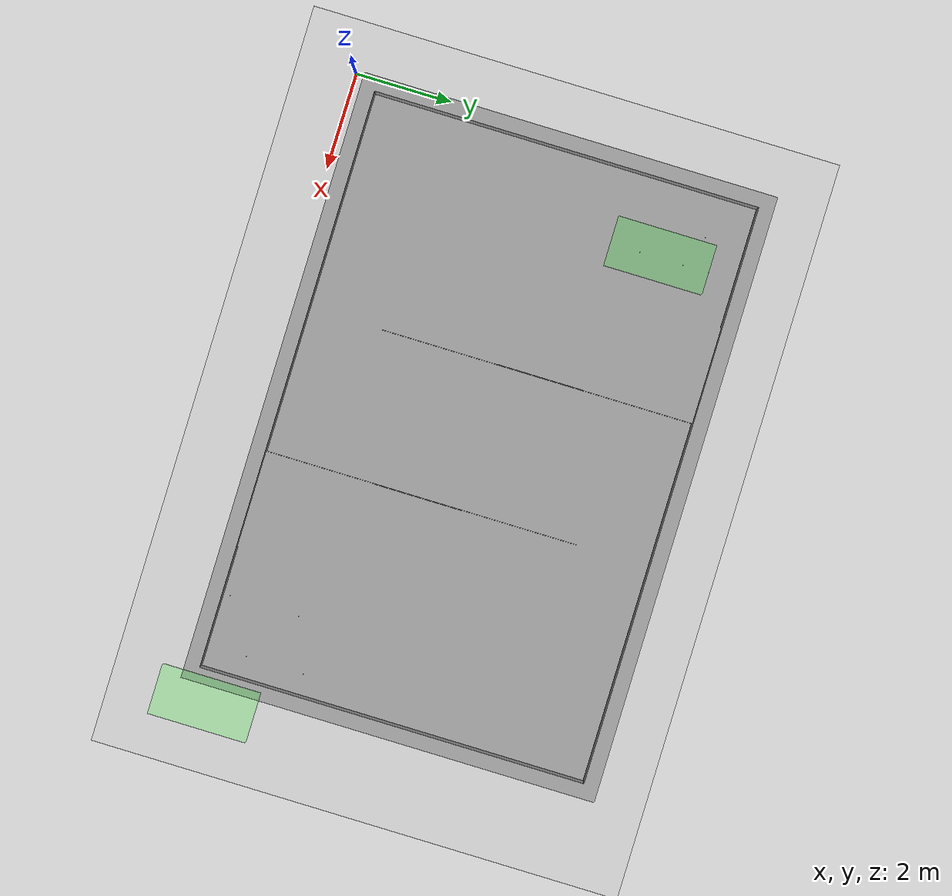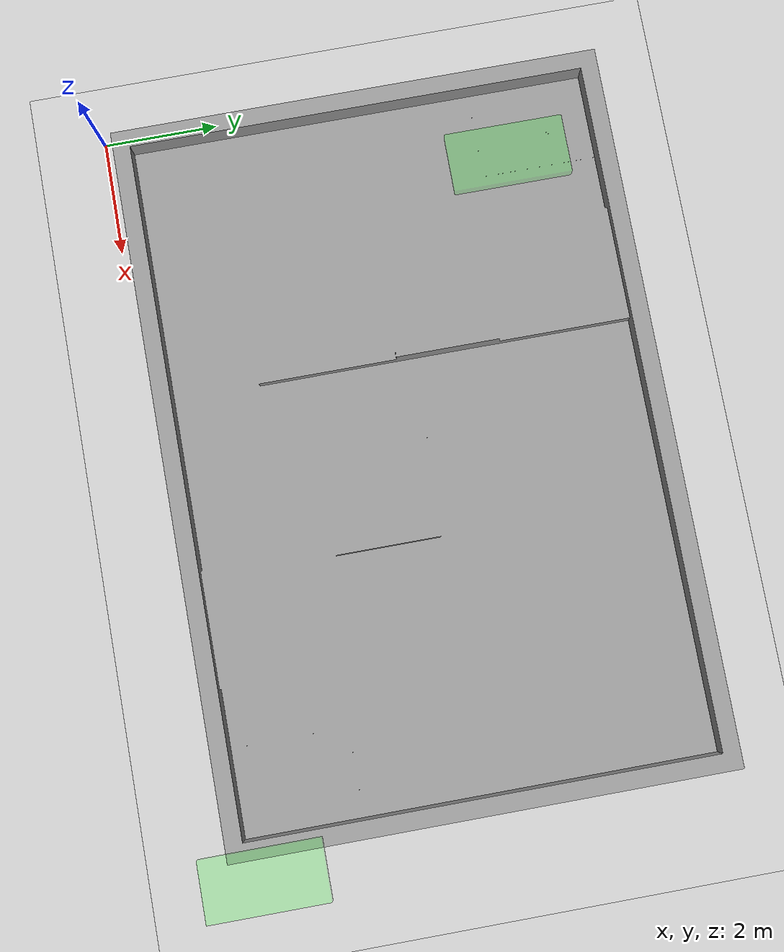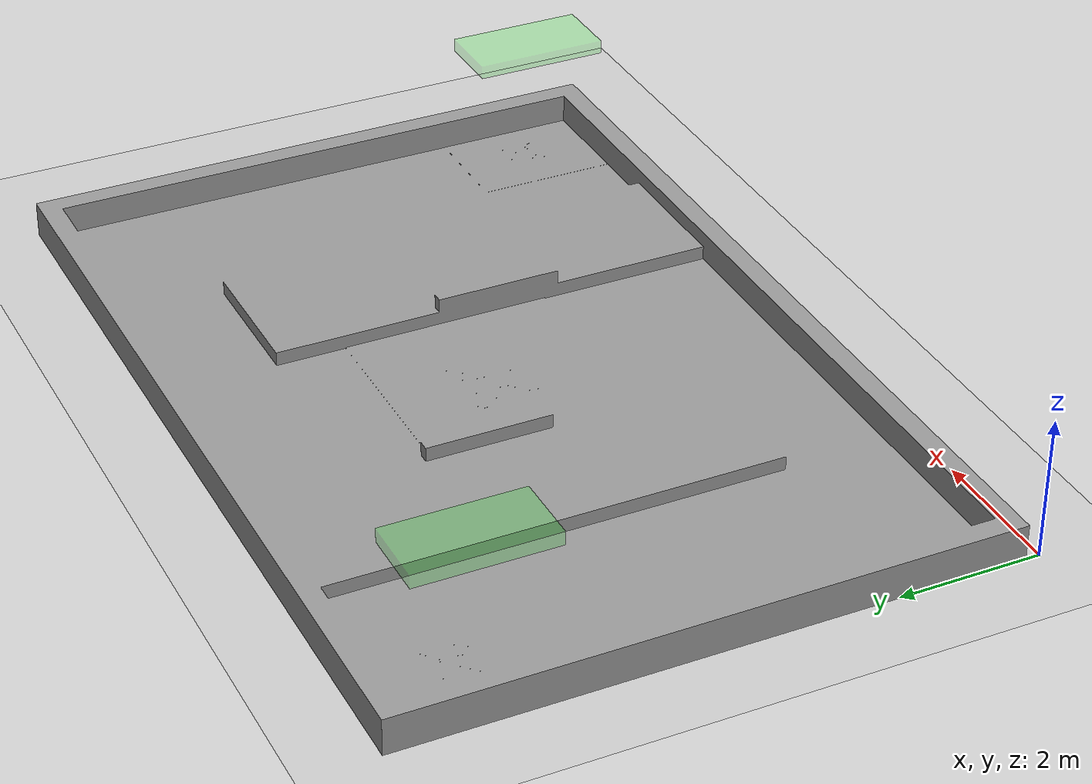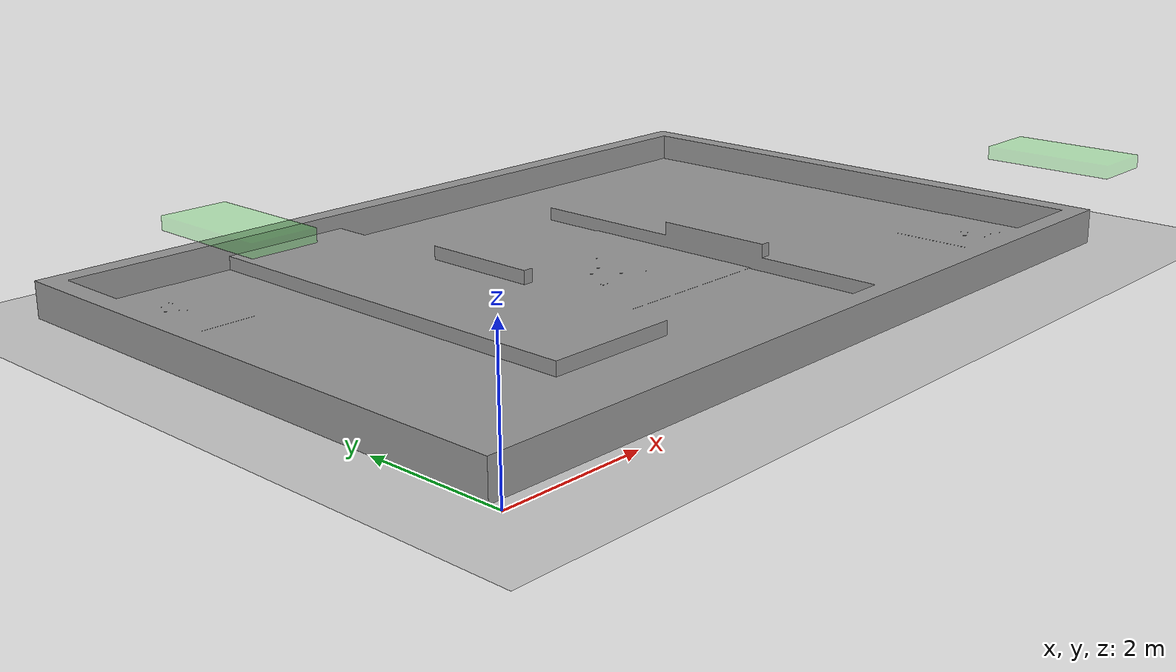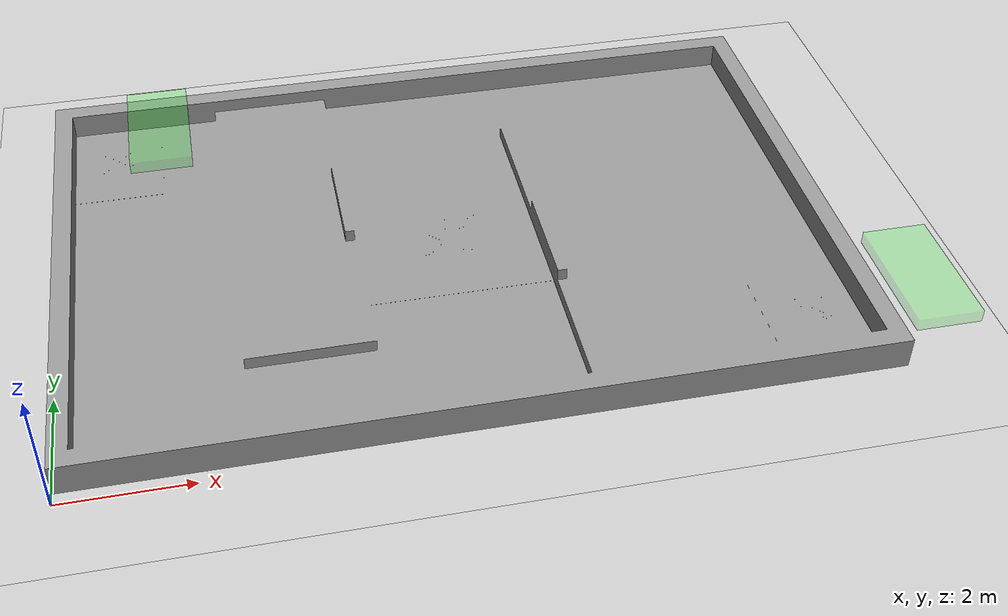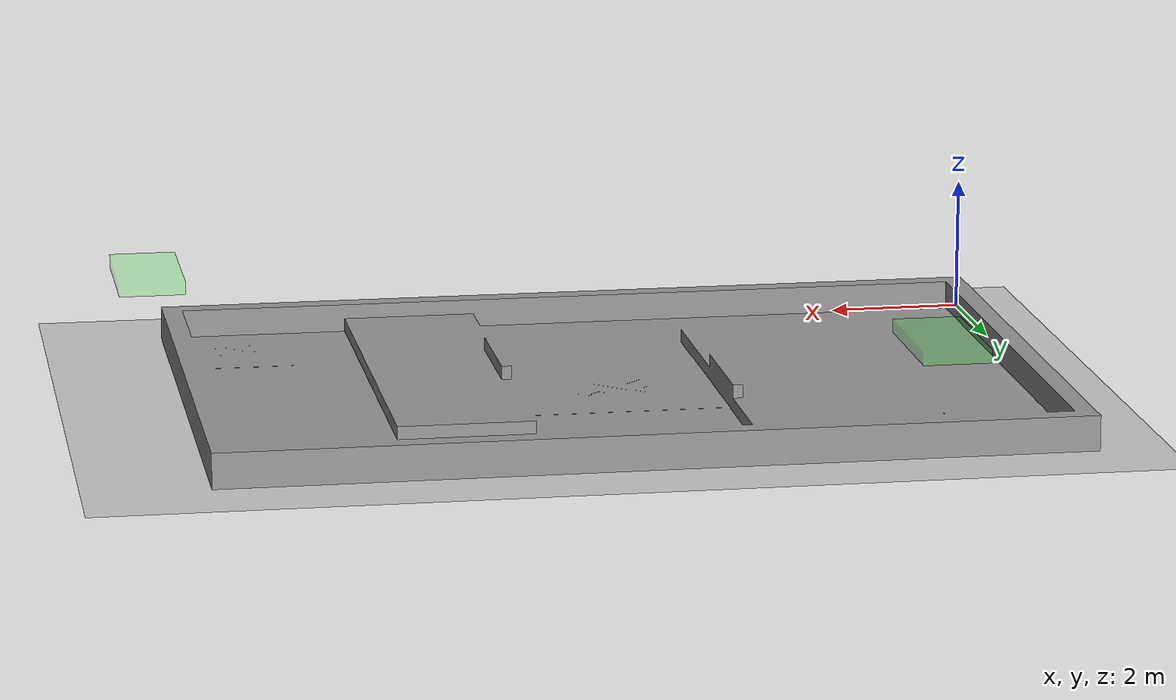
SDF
<?xml version='1.0' encoding='utf-8'?>
<sdf version='1.7'>
  <world name='default'>
    <!-- Physics -->
    <plugin filename="libignition-gazebo-physics-system.so" name="ignition::gazebo::systems::Physics">
    </plugin>

    <!-- Forwards simulation state to the GUI -->
    <plugin filename="libignition-gazebo-scene-broadcaster-system.so" name="ignition::gazebo::systems::SceneBroadcaster">
    </plugin>

    <!-- Processes user commands, like translate and create -->
    <plugin filename="libignition-gazebo-user-commands-system.so" name="ignition::gazebo::systems::UserCommands">
    </plugin>

    <!-- Generates rendering sensor data -->
    <plugin filename="libignition-gazebo-sensors-system.so" name="ignition::gazebo::systems::Sensors">
      <render_engine>ogre</render_engine>
    </plugin>

    <plugin filename="libignition-gazebo-imu-system.so" name="ignition::gazebo::systems::Imu">
    </plugin>

    <light type='directional' name='direct_light'>
      <cast_shadows>true</cast_shadows>
      <pose>7.4 3.6 10 0 0 0</pose>
      <diffuse>1.0 1.0 1.0 1</diffuse>
      <specular>0.5 0.5 0.5 1</specular>
      <attenuation>
        <range>1000</range>
        <constant>0.9</constant>
        <linear>0.01</linear>
        <quadratic>0.001</quadratic>
      </attenuation>
      <direction>0 0 -1</direction>
    </light>

    <!-- Your custom rmul_2026 model (assumed to be defined in its own model.sdf with .stl mesh) -->
    <model name='rmul_2026'>
      <include>
        <uri>model://rmul_2026</uri>
      </include>
      <pose>0.0 0.0 0.52 -1.5708 0 0</pose>
      <static>true</static>
    </model>

    <model name="red_supplier">
      <static>true</static>
      <pose>1.86 6.85 1.2 0 0 0</pose>
      <link name='body'>
        <visual name='visual'>
          <transparency>0.9</transparency>
          <geometry>
            <box>
              <size>1 2 0.2</size>
            </box>
          </geometry>
          <material>
            <ambient>0.0 1.0 0.0 1</ambient>
            <diffuse>0.0 1.0 0.0 1</diffuse>
            <specular>0.5 0.5 0.5 1</specular>
          </material>
          <cast_shadows>false</cast_shadows>
        </visual>
      </link>
      <plugin filename="ignition-gazebo-performer-detector-system" name="gz::sim::systems::PerformerDetector">
        <geometry>
          <box>
            <size>0 0 0</size>
          </box>
        </geometry>
        <pose>0 0 0 0 0 0</pose>
      </plugin>
    </model>

    <model name="blue_supplier">
      <static>true</static>
      <pose>12.85 0.85 1.2 0 0 0</pose>
      <link name='body'>
        <visual name='visual'>
          <transparency>0.9</transparency>
          <geometry>
            <box>
              <size>1 2 0.2</size>
            </box>
          </geometry>
          <material>
            <ambient>0.0 1.0 0.0 1</ambient>
            <diffuse>0.0 1.0 0.0 1</diffuse>
            <specular>0.5 0.5 0.5 1</specular>
          </material>
          <cast_shadows>false</cast_shadows>
        </visual>
      </link>
      <plugin filename="ignition-gazebo-performer-detector-system" name="gz::sim::systems::PerformerDetector">
        <geometry>
          <box>
            <size>0 0 0</size>
          </box>
        </geometry>
        <pose>0 0 0 0 0 0</pose>
      </plugin>
    </model>

    <model name='ground_plane'>
      <static>true</static>
      <link name='link'>
        <collision name='collision'>
          <geometry>
            <plane>
              <normal>0 0 1</normal>
            </plane>
          </geometry>
        </collision>
        <visual name='visual'>
          <geometry>
            <plane>
              <normal>0 0 1</normal>
              <size>100 100</size>
            </plane>
          </geometry>
          <material>
            <ambient>0.8 0.8 0.8 1</ambient>
            <diffuse>0.8 0.8 0.8 1</diffuse>
            <specular>0.8 0.8 0.8 1</specular>
          </material>
        </visual>
      </link>
    </model>
  </world>
</sdf>

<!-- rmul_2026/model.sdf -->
<sdf version='1.6'>
  <model name='rmul_2026'>
    <static>true</static>
    <link name='body'>
      <inertial>
        <mass>2.0</mass>
        <pose frame=''>0 0 0 0 0 0</pose>
        <inertia>
          <ixx>0.570</ixx>
          <ixy>0</ixy>
          <ixz>0</ixz>
          <iyy>0.474</iyy>
          <iyz>0</iyz>
          <izz>0.391</izz>
        </inertia>
      </inertial>

      <pose frame=''>0 0 0.2 0 0 0</pose>
      <self_collide>0</self_collide>
      <kinematic>0</kinematic>
      <gravity>1</gravity>

      <!-- Visual -->
      <visual name='visual'>
        <geometry>
          <mesh>
            <uri>model://rmul_2026/meshes/rmul_2026.stl</uri>
            <scale>1 1 1</scale>
          </mesh>
        </geometry>
        <meta>
          <layer>1</layer>
        </meta>
        <material>
          <lighting>1</lighting>
          <script>
            <uri>file://media/materials/scripts/gazebo.material</uri>
            <name>Gazebo/Grey</name>
          </script>
          <shader type='pixel'>
            <normal_map>__default__</normal_map>
          </shader>
          <ambient>0.3 0.3 0.3 1</ambient>
          <diffuse>0.7 0.7 0.7 1</diffuse>
          <specular>0.01 0.01 0.01 1</specular>
          <emissive>0 0 0 1</emissive>
        </material>
      </visual>

      <!-- Collision -->
      <collision name='collision'>
        <laser_retro>0</laser_retro>
        <max_contacts>10</max_contacts>
        <geometry>
          <mesh>
            <uri>model://rmul_2026/meshes/rmul_2026.stl</uri>
            <scale>1 1 1</scale>
          </mesh>
        </geometry>
        <surface>
          <friction>
            <ode>
              <mu>0.1</mu>
              <mu2>0.1</mu2>
              <fdir1>0 0 0</fdir1>
              <slip1>0</slip1>
              <slip2>0</slip2>
            </ode>
            <torsional>
              <coefficient>1</coefficient>
              <patch_radius>0</patch_radius>
              <surface_radius>0</surface_radius>
              <use_patch_radius>1</use_patch_radius>
              <ode>
                <slip>0</slip>
              </ode>
            </torsional>
          </friction>
        </surface>
      </collision>
    </link>
  </model>
</sdf>
